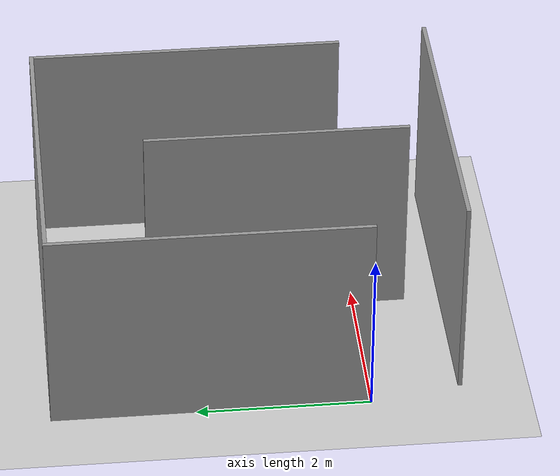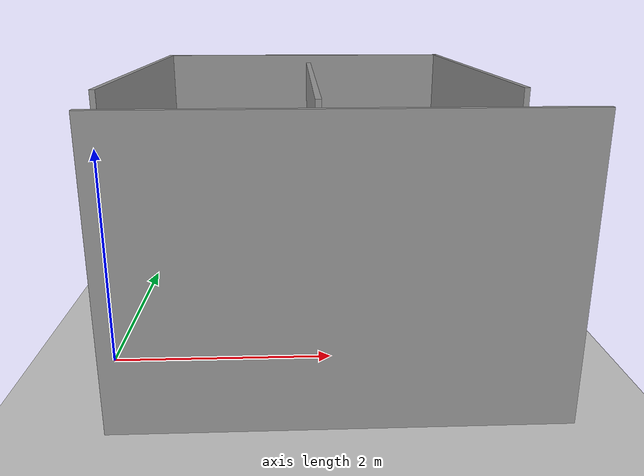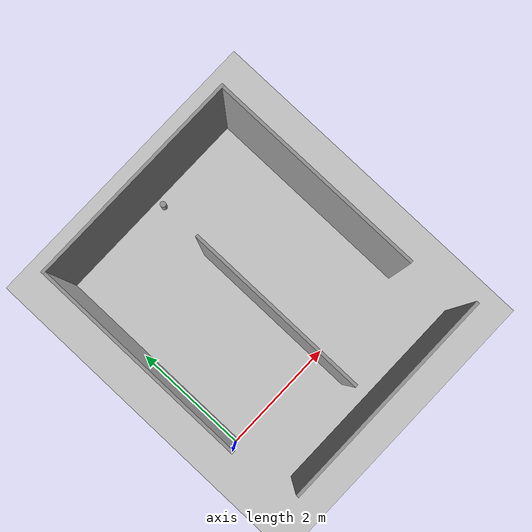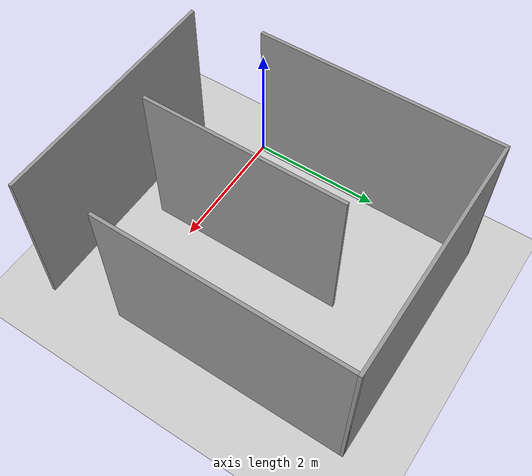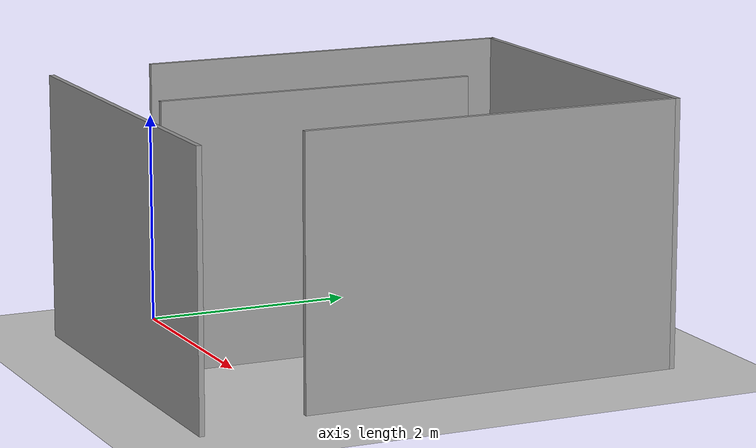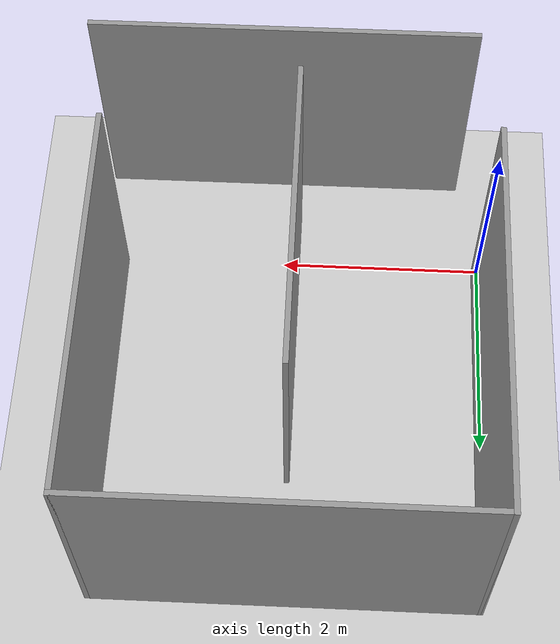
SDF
<sdf version="1.7">
 <world name="default">
  <model name="ground_plane">
   <static>1</static>
   <link name="link">
    <collision name="collision">
     <geometry><plane><normal>0 0 1</normal><size>100 100</size></plane></geometry>
     <surface>
      <contact><collide_bitmask>65535</collide_bitmask></contact>
      <friction><ode><mu>100</mu><mu2>50</mu2></ode></friction>
     </surface>
    </collision>
    <visual name="visual">
     <cast_shadows>0</cast_shadows>
     <geometry><plane><normal>0 0 1</normal><size>100 100</size></plane></geometry>
     <material>
      <script><uri>file://media/materials/scripts/gazebo.material</uri><name>Gazebo/Grey</name></script>
     </material>
    </visual>
   </link>
  </model>
  <model name="Untitled_0_0">
   <link name="Wall_17">
    <pose>0 2.11 0 0 -0 0</pose>
    <visual name="Wall_17_Visual">
     <pose>0 0 1.25 0 -0 0</pose>
     <geometry><box><size>3.66 0.05 2.5</size></box></geometry>
     <material>
      <script><uri>file://media/materials/scripts/gazebo.material</uri><name>Gazebo/Grey</name></script>
      <ambient>1 1 1 1</ambient>
      <shader type="pixel"/>
     </material>
     <meta><layer>0</layer></meta>
    </visual>
    <collision name="Wall_17_Collision">
     <pose>0 0 1.25 0 -0 0</pose>
     <geometry><box><size>3.66 0.05 2.5</size></box></geometry>
     <surface>
      <friction>
       <ode><mu>1</mu><mu2>1</mu2><fdir1>0 0 0</fdir1><slip1>0</slip1><slip2>0</slip2></ode>
       <torsional>
        <coefficient>1</coefficient>
        <patch_radius>0</patch_radius>
        <surface_radius>0</surface_radius>
        <use_patch_radius>1</use_patch_radius>
        <ode><slip>0</slip></ode>
       </torsional>
      </friction>
      <bounce><restitution_coefficient>0</restitution_coefficient><threshold>1e+06</threshold></bounce>
      <contact>
       <collide_without_contact>0</collide_without_contact>
       <collide_without_contact_bitmask>1</collide_without_contact_bitmask>
       <collide_bitmask>1</collide_bitmask>
       <ode>
        <soft_cfm>0</soft_cfm>
        <soft_erp>0.2</soft_erp>
        <kp>1e+13</kp>
        <kd>1</kd>
        <max_vel>0.01</max_vel>
        <min_depth>0</min_depth>
       </ode>
       <bullet>
        <split_impulse>1</split_impulse>
        <split_impulse_penetration_threshold>-0.01</split_impulse_penetration_threshold>
        <soft_cfm>0</soft_cfm>
        <soft_erp>0.2</soft_erp>
        <kp>1e+13</kp>
        <kd>1</kd>
       </bullet>
      </contact>
     </surface>
    </collision>
   </link>
   <link name="Wall_17_clone">
    <pose>0.196713 -2.56803 0 0 -0 0</pose>
    <visual name="Wall_17_Visual">
     <pose>0 0 1.25 0 -0 0</pose>
     <geometry><box><size>3.66 0.05 2.5</size></box></geometry>
     <material>
      <script><uri>file://media/materials/scripts/gazebo.material</uri><name>Gazebo/Grey</name></script>
      <ambient>1 1 1 1</ambient>
      <shader type="pixel"/>
     </material>
     <meta><layer>0</layer></meta>
    </visual>
    <collision name="Wall_17_Collision">
     <pose>0 0 1.25 0 -0 0</pose>
     <geometry><box><size>3.66 0.05 2.5</size></box></geometry>
     <surface>
      <friction>
       <ode><mu>1</mu><mu2>1</mu2><fdir1>0 0 0</fdir1><slip1>0</slip1><slip2>0</slip2></ode>
       <torsional>
        <coefficient>1</coefficient>
        <patch_radius>0</patch_radius>
        <surface_radius>0</surface_radius>
        <use_patch_radius>1</use_patch_radius>
        <ode><slip>0</slip></ode>
       </torsional>
      </friction>
      <bounce><restitution_coefficient>0</restitution_coefficient><threshold>1e+06</threshold></bounce>
      <contact>
       <collide_without_contact>0</collide_without_contact>
       <collide_without_contact_bitmask>1</collide_without_contact_bitmask>
       <collide_bitmask>1</collide_bitmask>
       <ode>
        <soft_cfm>0</soft_cfm>
        <soft_erp>0.2</soft_erp>
        <kp>1e+13</kp>
        <kd>1</kd>
        <max_vel>0.01</max_vel>
        <min_depth>0</min_depth>
       </ode>
       <bullet>
        <split_impulse>1</split_impulse>
        <split_impulse_penetration_threshold>-0.01</split_impulse_penetration_threshold>
        <soft_cfm>0</soft_cfm>
        <soft_erp>0.2</soft_erp>
        <kp>1e+13</kp>
        <kd>1</kd>
       </bullet>
      </contact>
     </surface>
    </collision>
   </link>
   <link name="Wall_2">
    <pose>0.025 -0.61 0 0 -0 1.5708</pose>
    <visual name="Wall_2_Visual">
     <pose>0 0 1.25 0 -0 0</pose>
     <geometry><box><size>3.05 0.05 2.5</size></box></geometry>
     <material>
      <script><uri>file://media/materials/scripts/gazebo.material</uri><name>Gazebo/Grey</name></script>
      <ambient>1 1 1 1</ambient>
      <shader type="pixel"/>
     </material>
     <meta><layer>0</layer></meta>
    </visual>
    <collision name="Wall_2_Collision">
     <pose>0 0 1.25 0 -0 0</pose>
     <geometry><box><size>3.05 0.05 2.5</size></box></geometry>
     <surface>
      <friction>
       <ode><mu>1</mu><mu2>1</mu2><fdir1>0 0 0</fdir1><slip1>0</slip1><slip2>0</slip2></ode>
       <torsional>
        <coefficient>1</coefficient>
        <patch_radius>0</patch_radius>
        <surface_radius>0</surface_radius>
        <use_patch_radius>1</use_patch_radius>
        <ode><slip>0</slip></ode>
       </torsional>
      </friction>
      <bounce><restitution_coefficient>0</restitution_coefficient><threshold>1e+06</threshold></bounce>
      <contact>
       <collide_without_contact>0</collide_without_contact>
       <collide_without_contact_bitmask>1</collide_without_contact_bitmask>
       <collide_bitmask>1</collide_bitmask>
       <ode>
        <soft_cfm>0</soft_cfm>
        <soft_erp>0.2</soft_erp>
        <kp>1e+13</kp>
        <kd>1</kd>
        <max_vel>0.01</max_vel>
        <min_depth>0</min_depth>
       </ode>
       <bullet>
        <split_impulse>1</split_impulse>
        <split_impulse_penetration_threshold>-0.01</split_impulse_penetration_threshold>
        <soft_cfm>0</soft_cfm>
        <soft_erp>0.2</soft_erp>
        <kp>1e+13</kp>
        <kd>1</kd>
       </bullet>
      </contact>
     </surface>
    </collision>
   </link>
   <link name="Wall_22">
    <pose>1.805 0.305 0 0 -0 1.5708</pose>
    <visual name="Wall_22_Visual">
     <pose>0 0 1.25 0 -0 0</pose>
     <geometry><box><size>3.66 0.05 2.5</size></box></geometry>
     <material>
      <script><uri>file://media/materials/scripts/gazebo.material</uri><name>Gazebo/Grey</name></script>
      <ambient>1 1 1 1</ambient>
      <shader type="pixel"/>
     </material>
     <meta><layer>0</layer></meta>
    </visual>
    <collision name="Wall_22_Collision">
     <pose>0 0 1.25 0 -0 0</pose>
     <geometry><box><size>3.66 0.05 2.5</size></box></geometry>
     <surface>
      <friction>
       <ode><mu>1</mu><mu2>1</mu2><fdir1>0 0 0</fdir1><slip1>0</slip1><slip2>0</slip2></ode>
       <torsional>
        <coefficient>1</coefficient>
        <patch_radius>0</patch_radius>
        <surface_radius>0</surface_radius>
        <use_patch_radius>1</use_patch_radius>
        <ode><slip>0</slip></ode>
       </torsional>
      </friction>
      <bounce><restitution_coefficient>0</restitution_coefficient><threshold>1e+06</threshold></bounce>
      <contact>
       <collide_without_contact>0</collide_without_contact>
       <collide_without_contact_bitmask>1</collide_without_contact_bitmask>
       <collide_bitmask>1</collide_bitmask>
       <ode>
        <soft_cfm>0</soft_cfm>
        <soft_erp>0.2</soft_erp>
        <kp>1e+13</kp>
        <kd>1</kd>
        <max_vel>0.01</max_vel>
        <min_depth>0</min_depth>
       </ode>
       <bullet>
        <split_impulse>1</split_impulse>
        <split_impulse_penetration_threshold>-0.01</split_impulse_penetration_threshold>
        <soft_cfm>0</soft_cfm>
        <soft_erp>0.2</soft_erp>
        <kp>1e+13</kp>
        <kd>1</kd>
       </bullet>
      </contact>
     </surface>
    </collision>
   </link>
   <link name="Wall_7">
    <pose>-1.805 0.305 0 0 -0 1.5708</pose>
    <visual name="Wall_7_Visual">
     <pose>0 0 1.25 0 -0 0</pose>
     <geometry><box><size>3.66 0.05 2.5</size></box></geometry>
     <material>
      <script><uri>file://media/materials/scripts/gazebo.material</uri><name>Gazebo/Grey</name></script>
      <ambient>1 1 1 1</ambient>
      <shader type="pixel"/>
     </material>
     <meta><layer>0</layer></meta>
    </visual>
    <collision name="Wall_7_Collision">
     <pose>0 0 1.25 0 -0 0</pose>
     <geometry><box><size>3.66 0.05 2.5</size></box></geometry>
     <surface>
      <friction>
       <ode><mu>1</mu><mu2>1</mu2><fdir1>0 0 0</fdir1><slip1>0</slip1><slip2>0</slip2></ode>
       <torsional>
        <coefficient>1</coefficient>
        <patch_radius>0</patch_radius>
        <surface_radius>0</surface_radius>
        <use_patch_radius>1</use_patch_radius>
        <ode><slip>0</slip></ode>
       </torsional>
      </friction>
      <bounce><restitution_coefficient>0</restitution_coefficient><threshold>1e+06</threshold></bounce>
      <contact>
       <collide_without_contact>0</collide_without_contact>
       <collide_without_contact_bitmask>1</collide_without_contact_bitmask>
       <collide_bitmask>1</collide_bitmask>
       <ode>
        <soft_cfm>0</soft_cfm>
        <soft_erp>0.2</soft_erp>
        <kp>1e+13</kp>
        <kd>1</kd>
        <max_vel>0.01</max_vel>
        <min_depth>0</min_depth>
       </ode>
       <bullet>
        <split_impulse>1</split_impulse>
        <split_impulse_penetration_threshold>-0.01</split_impulse_penetration_threshold>
        <soft_cfm>0</soft_cfm>
        <soft_erp>0.2</soft_erp>
        <kp>1e+13</kp>
        <kd>1</kd>
       </bullet>
      </contact>
     </surface>
    </collision>
   </link>
   <static>1</static>
   <pose>1.83683 1.51982 0 0 -0 0</pose>
  </model>
  <model name="unit_cylinder_clone_clone_clone_0_clone_clone_clone_clone_clone_0">
   <link name="link">
    <inertial>
     <mass>1</mass>
     <inertia><ixx>0.145833</ixx><ixy>0</ixy><ixz>0</ixz><iyy>0.145833</iyy><iyz>0</iyz><izz>0.125</izz></inertia>
    </inertial>
    <visual name="visual">
     <geometry><cylinder><radius>0.05</radius><length>0.3</length></cylinder></geometry>
     <material>
      <script><name>Gazebo/Grey</name><uri>file://media/materials/scripts/gazebo.material</uri></script>
      <shader type="pixel"><normal_map>__default__</normal_map></shader>
      <ambient>0.3 0.3 0.3 1</ambient>
      <diffuse>0.7 0.7 0.7 1</diffuse>
      <specular>0.01 0.01 0.01 1</specular>
      <emissive>0 0 0 1</emissive>
     </material>
    </visual>
    <collision name="collision">
     <pose>0 0 -0.23 0 -0 0</pose>
     <geometry><cylinder><radius>0.05</radius><length>0.3</length></cylinder></geometry>
     <surface>
      <friction>
       <ode><mu>1</mu><mu2>1</mu2><fdir1>0 0 0</fdir1><slip1>0</slip1><slip2>0</slip2></ode>
       <torsional>
        <coefficient>1</coefficient>
        <patch_radius>0</patch_radius>
        <surface_radius>0</surface_radius>
        <use_patch_radius>1</use_patch_radius>
        <ode><slip>0</slip></ode>
       </torsional>
      </friction>
      <bounce><restitution_coefficient>0</restitution_coefficient><threshold>1e+06</threshold></bounce>
      <contact>
       <collide_without_contact>0</collide_without_contact>
       <collide_without_contact_bitmask>1</collide_without_contact_bitmask>
       <collide_bitmask>1</collide_bitmask>
       <ode>
        <soft_cfm>0</soft_cfm>
        <soft_erp>0.2</soft_erp>
        <kp>1e+13</kp>
        <kd>1</kd>
        <max_vel>0.01</max_vel>
        <min_depth>0</min_depth>
       </ode>
       <bullet>
        <split_impulse>1</split_impulse>
        <split_impulse_penetration_threshold>-0.01</split_impulse_penetration_threshold>
        <soft_cfm>0</soft_cfm>
        <soft_erp>0.2</soft_erp>
        <kp>1e+13</kp>
        <kd>1</kd>
       </bullet>
      </contact>
     </surface>
    </collision>
   </link>
   <static>0</static>
   <pose>1.95531 3.41694 0.380232 0.004109 -0.002329 -0.633341</pose>
  </model>
 </world>
</sdf>
